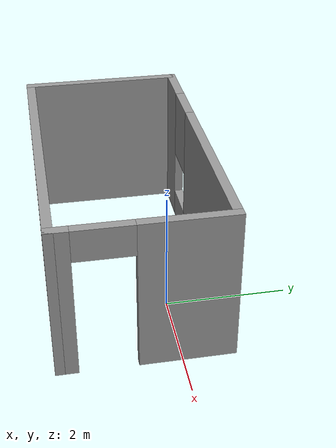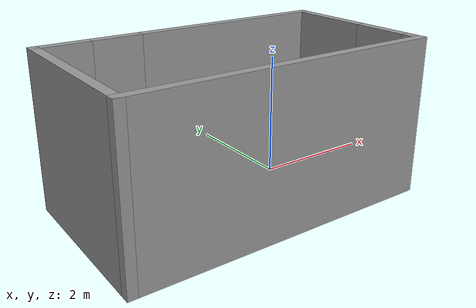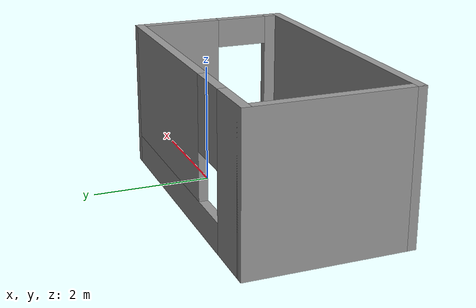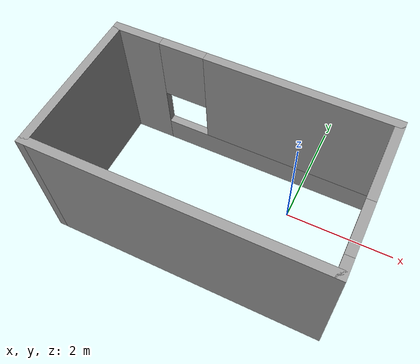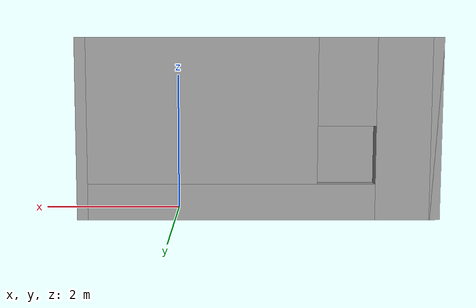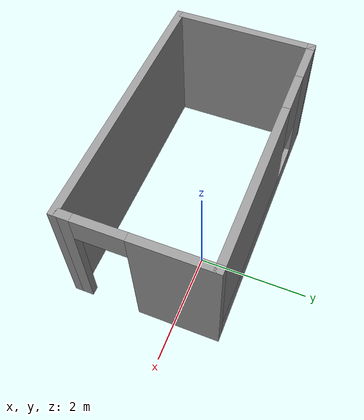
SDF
<?xml version='1.0'?>
<sdf version='1.7'>
  <model name='simpleRoom'>
    <pose>-1.15195 -0.542349 0 0 -0 0</pose>
    <link name='Wall_10'>
      <pose>2.425 0 0 0 -0 -1.5708</pose>
      <visual name='Wall_10_Visual_0'>
        <pose>-0.627422 0 1.25 0 -0 0</pose>
        <geometry>
          <box>
            <size>1.49516 0.15 2.5</size>
          </box>
        </geometry>
        <material>
          <script>
            <uri>file://media/materials/scripts/gazebo.material</uri>
            <name>Gazebo/Grey</name>
          </script>
          <ambient>1 1 1 1</ambient>
        </material>
        <meta>
          <layer>0</layer>
        </meta>
      </visual>
      <collision name='Wall_10_Collision_0'>
        <geometry>
          <box>
            <size>1.49516 0.15 2.5</size>
          </box>
        </geometry>
        <pose>-0.627422 0 1.25 0 -0 0</pose>
      </collision>
      <visual name='Wall_10_Visual_1'>
        <pose>1.19758 0 1.25 0 -0 0</pose>
        <geometry>
          <box>
            <size>0.354843 0.15 2.5</size>
          </box>
        </geometry>
        <material>
          <script>
            <uri>file://media/materials/scripts/gazebo.material</uri>
            <name>Gazebo/Grey</name>
          </script>
          <ambient>1 1 1 1</ambient>
        </material>
        <meta>
          <layer>0</layer>
        </meta>
      </visual>
      <collision name='Wall_10_Collision_1'>
        <geometry>
          <box>
            <size>0.354843 0.15 2.5</size>
          </box>
        </geometry>
        <pose>1.19758 0 1.25 0 -0 0</pose>
      </collision>
      <visual name='Wall_10_Visual_2'>
        <pose>0.570157 0 2.25 0 -0 0</pose>
        <geometry>
          <box>
            <size>0.9 0.15 0.5</size>
          </box>
        </geometry>
        <material>
          <script>
            <uri>file://media/materials/scripts/gazebo.material</uri>
            <name>Gazebo/Grey</name>
          </script>
          <ambient>1 1 1 1</ambient>
        </material>
        <meta>
          <layer>0</layer>
        </meta>
      </visual>
      <collision name='Wall_10_Collision_2'>
        <geometry>
          <box>
            <size>0.9 0.15 0.5</size>
          </box>
        </geometry>
        <pose>0.570157 0 2.25 0 -0 0</pose>
      </collision>
    </link>
    <link name='Wall_11'>
      <collision name='Wall_11_Collision'>
        <geometry>
          <box>
            <size>5 0.15 2.5</size>
          </box>
        </geometry>
        <pose>0 0 1.25 0 -0 0</pose>
      </collision>
      <visual name='Wall_11_Visual'>
        <pose>0 0 1.25 0 -0 0</pose>
        <geometry>
          <box>
            <size>5 0.15 2.5</size>
          </box>
        </geometry>
        <material>
          <script>
            <uri>file://media/materials/scripts/gazebo.material</uri>
            <name>Gazebo/Grey</name>
          </script>
          <ambient>1 1 1 1</ambient>
        </material>
        <meta>
          <layer>0</layer>
        </meta>
      </visual>
      <pose>0 -1.3 0 0 -0 3.14159</pose>
    </link>
    <link name='Wall_8'>
      <collision name='Wall_8_Collision'>
        <geometry>
          <box>
            <size>2.75 0.15 2.5</size>
          </box>
        </geometry>
        <pose>0 0 1.25 0 -0 0</pose>
      </collision>
      <visual name='Wall_8_Visual'>
        <pose>0 0 1.25 0 -0 0</pose>
        <geometry>
          <box>
            <size>2.75 0.15 2.5</size>
          </box>
        </geometry>
        <material>
          <script>
            <uri>file://media/materials/scripts/gazebo.material</uri>
            <name>Gazebo/Grey</name>
          </script>
          <ambient>1 1 1 1</ambient>
        </material>
        <meta>
          <layer>0</layer>
        </meta>
      </visual>
      <pose>-2.425 0 0 0 -0 1.5708</pose>
    </link>
    <link name='Wall_9'>
      <pose>0 1.3 0 0 -0 0</pose>
      <visual name='Wall_9_Visual_0'>
        <pose>-2.05101 0 1.25 0 -0 0</pose>
        <geometry>
          <box>
            <size>0.89798 0.15 2.5</size>
          </box>
        </geometry>
        <material>
          <script>
            <uri>file://media/materials/scripts/gazebo.material</uri>
            <name>Gazebo/Grey</name>
          </script>
          <ambient>1 1 1 1</ambient>
        </material>
        <meta>
          <layer>0</layer>
        </meta>
      </visual>
      <collision name='Wall_9_Collision_0'>
        <geometry>
          <box>
            <size>0.89798 0.15 2.5</size>
          </box>
        </geometry>
        <pose>-2.05101 0 1.25 0 -0 0</pose>
      </collision>
      <visual name='Wall_9_Visual_1'>
        <pose>0.44899 0 0.25 0 -0 0</pose>
        <geometry>
          <box>
            <size>4.10202 0.15 0.5</size>
          </box>
        </geometry>
        <material>
          <script>
            <uri>file://media/materials/scripts/gazebo.material</uri>
            <name>Gazebo/Grey</name>
          </script>
          <ambient>1 1 1 1</ambient>
        </material>
        <meta>
          <layer>0</layer>
        </meta>
      </visual>
      <collision name='Wall_9_Collision_1'>
        <geometry>
          <box>
            <size>4.10202 0.15 0.5</size>
          </box>
        </geometry>
        <pose>0.44899 0 0.25 0 -0 0</pose>
      </collision>
      <visual name='Wall_9_Visual_2'>
        <pose>0.84899 0 1.5 0 -0 0</pose>
        <geometry>
          <box>
            <size>3.30202 0.15 2</size>
          </box>
        </geometry>
        <material>
          <script>
            <uri>file://media/materials/scripts/gazebo.material</uri>
            <name>Gazebo/Grey</name>
          </script>
          <ambient>1 1 1 1</ambient>
        </material>
        <meta>
          <layer>0</layer>
        </meta>
      </visual>
      <collision name='Wall_9_Collision_2'>
        <geometry>
          <box>
            <size>3.30202 0.15 2</size>
          </box>
        </geometry>
        <pose>0.84899 0 1.5 0 -0 0</pose>
      </collision>
      <visual name='Wall_9_Visual_3'>
        <pose>-1.20202 0 1.9 0 -0 0</pose>
        <geometry>
          <box>
            <size>0.8 0.15 1.2</size>
          </box>
        </geometry>
        <material>
          <script>
            <uri>file://media/materials/scripts/gazebo.material</uri>
            <name>Gazebo/Grey</name>
          </script>
          <ambient>1 1 1 1</ambient>
        </material>
        <meta>
          <layer>0</layer>
        </meta>
      </visual>
      <collision name='Wall_9_Collision_3'>
        <geometry>
          <box>
            <size>0.8 0.15 1.2</size>
          </box>
        </geometry>
        <pose>-1.20202 0 1.9 0 -0 0</pose>
      </collision>
    </link>
    <static>1</static>
  </model>
</sdf>
